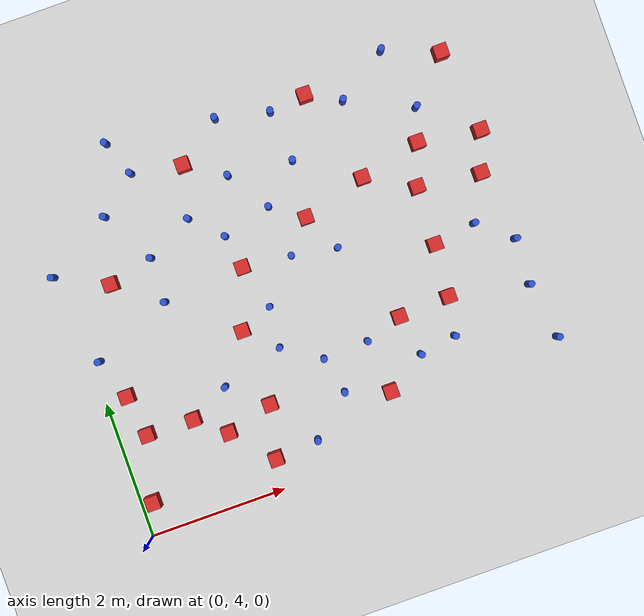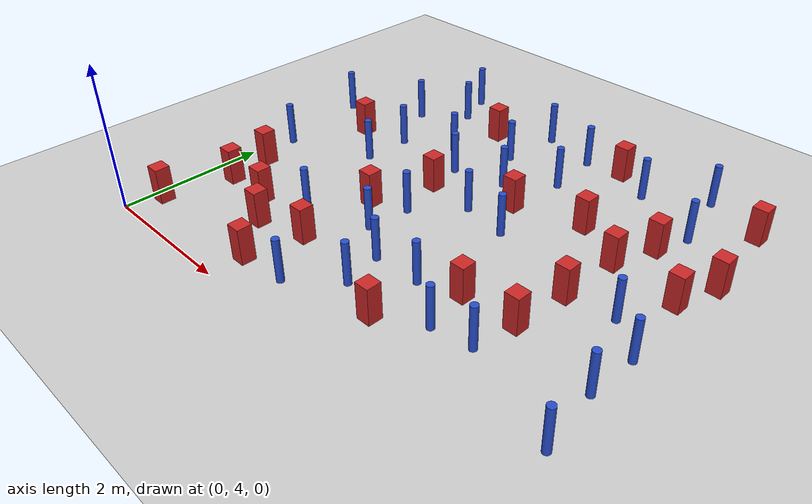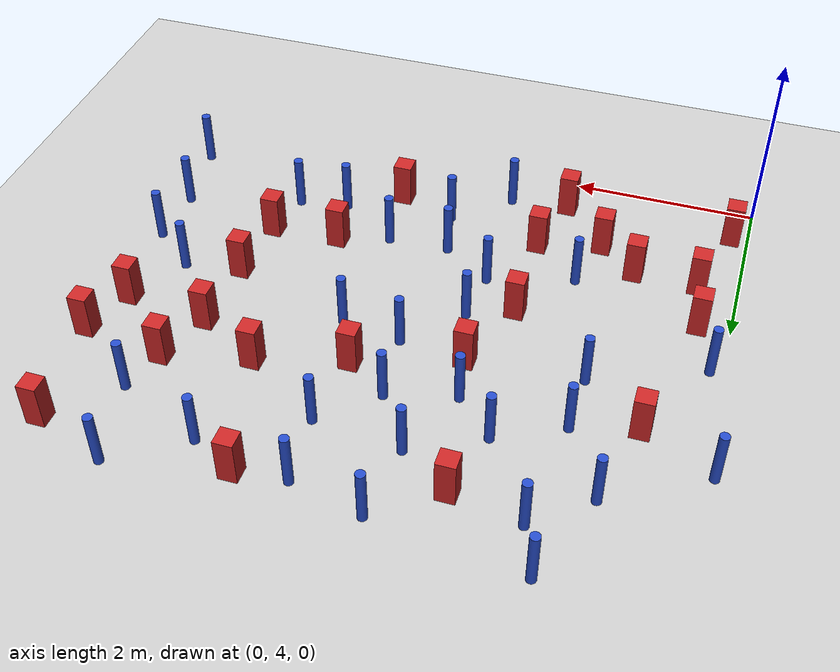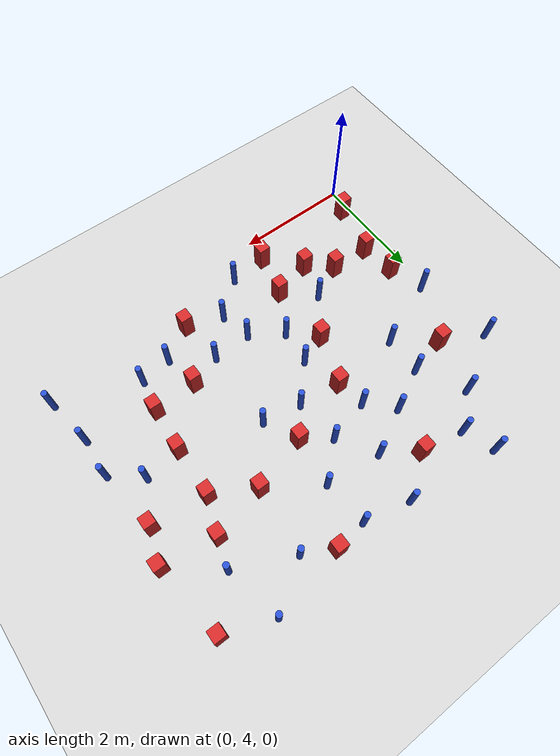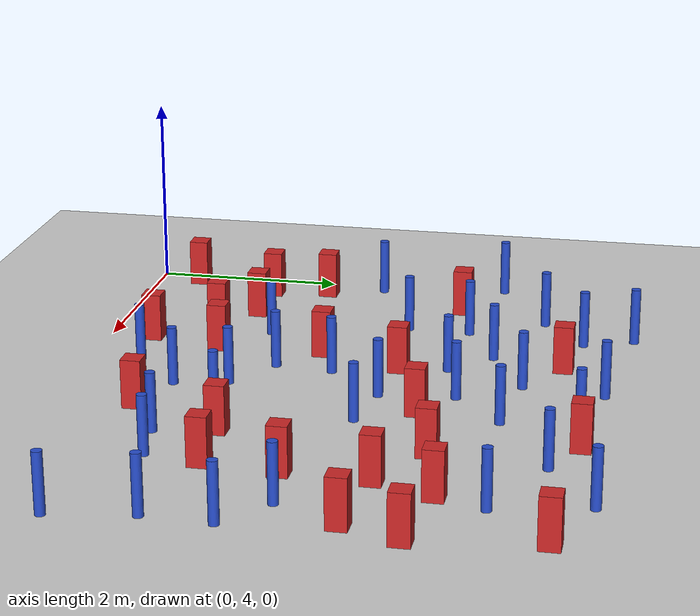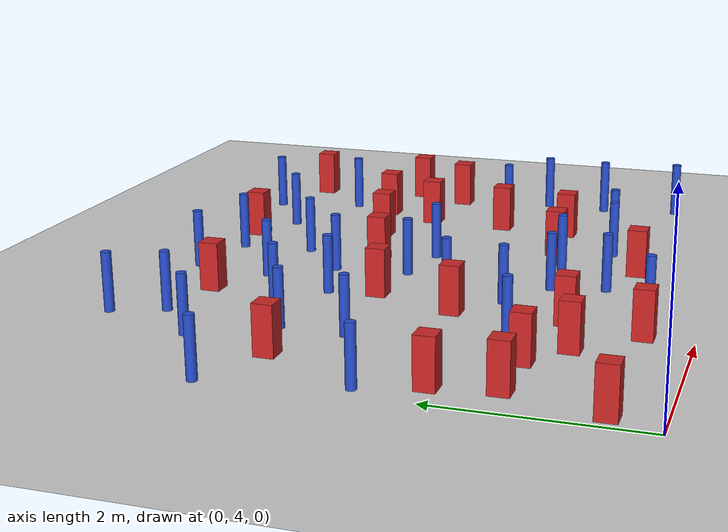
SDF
<sdf version="1.6">
 <world name="default">
  <model name="ground_plane">
   <static>1</static>
   <link name="link">
    <collision name="collision">
     <geometry><plane><normal>0 0 1</normal><size>100 100</size></plane></geometry>
     <surface><friction><ode><mu>100</mu><mu2>50</mu2></ode></friction></surface>
    </collision>
    <visual name="visual">
     <cast_shadows>0</cast_shadows>
     <geometry><plane><normal>0 0 1</normal><size>100 100</size></plane></geometry>
     <material>
      <ambient>1.0 1.0 1.0 1.0</ambient>
      <diffuse>0.8 0.8 0.8 1.0</diffuse>
      <specular>0.01 0.01 0.01 1.000000</specular>
     </material>
    </visual>
   </link>
  </model>
  <model name="square_post_obstacle1">
   <static>true</static>
   <pose>5.17241559216 6.57983816717 1.91545236811e-07 -7.35059704564e-06 1.12565212e-07 2.39332434364e-05</pose>
   <link name="link">
    <pose>0 0 0.25 0 -0 0</pose>
    <inertial>
     <mass>100</mass>
     <inertia>
      <ixx>0.166667</ixx>
      <ixy>0</ixy>
      <ixz>0</ixz>
      <iyy>0.166667</iyy>
      <iyz>0</iyz>
      <izz>0.166667</izz>
     </inertia>
    </inertial>
    <collision name="collision"><geometry><box><size>.2 .2 .5</size></box></geometry></collision>
    <visual name="visual">
     <geometry><box><size>.2 .2 .5</size></box></geometry>
     <material>
      <script><name>Gazebo/Red</name><uri>file://media/materials/scripts/gazebo.material</uri></script>
     </material>
    </visual>
   </link>
  </model>
  <model name="square_post_obstacle5">
   <static>true</static>
   <pose>6.12620740187 7.31819296594 1.91545236811e-07 -7.35059704564e-06 1.12565212e-07 2.39332434364e-05</pose>
   <link name="link">
    <pose>0 0 0.25 0 -0 0</pose>
    <inertial>
     <mass>100</mass>
     <inertia>
      <ixx>0.166667</ixx>
      <ixy>0</ixy>
      <ixz>0</ixz>
      <iyy>0.166667</iyy>
      <iyz>0</iyz>
      <izz>0.166667</izz>
     </inertia>
    </inertial>
    <collision name="collision"><geometry><box><size>.2 .2 .5</size></box></geometry></collision>
    <visual name="visual">
     <geometry><box><size>.2 .2 .5</size></box></geometry>
     <material>
      <script><name>Gazebo/Red</name><uri>file://media/materials/scripts/gazebo.material</uri></script>
     </material>
    </visual>
   </link>
  </model>
  <model name="pole_obstacle5">
   <static>true</static>
   <pose>2.83213413651 9.30783360719 7.38925637345e-09 -8.47170692793e-08 1.24976764408e-08 -1.74513093041e-07</pose>
   <link name="link">
    <pose>0 0 0.3 0 -0 0</pose>
    <inertial>
     <mass>1</mass>
     <inertia><ixx>0.145833</ixx><ixy>0</ixy><ixz>0</ixz><iyy>0.145833</iyy><iyz>0</iyz><izz>0.125</izz></inertia>
    </inertial>
    <collision name="collision">
     <geometry><cylinder><radius>0.05</radius><length>.6</length></cylinder></geometry>
    </collision>
    <visual name="visual">
     <geometry><cylinder><radius>0.05</radius><length>.6</length></cylinder></geometry>
     <material>
      <script><name>Gazebo/Blue</name><uri>file://media/materials/scripts/gazebo.material</uri></script>
     </material>
    </visual>
   </link>
  </model>
  <model name="square_post_obstacle14">
   <static>true</static>
   <pose>3.88749947179 4.82470724292 1.91545236811e-07 -7.35059704564e-06 1.12565212e-07 2.39332434364e-05</pose>
   <link name="link">
    <pose>0 0 0.25 0 -0 0</pose>
    <inertial>
     <mass>100</mass>
     <inertia>
      <ixx>0.166667</ixx>
      <ixy>0</ixy>
      <ixz>0</ixz>
      <iyy>0.166667</iyy>
      <iyz>0</iyz>
      <izz>0.166667</izz>
     </inertia>
    </inertial>
    <collision name="collision"><geometry><box><size>.2 .2 .5</size></box></geometry></collision>
    <visual name="visual">
     <geometry><box><size>.2 .2 .5</size></box></geometry>
     <material>
      <script><name>Gazebo/Red</name><uri>file://media/materials/scripts/gazebo.material</uri></script>
     </material>
    </visual>
   </link>
  </model>
  <model name="pole_obstacle22">
   <static>true</static>
   <pose>1.31160862554 7.74836695447 7.38925637345e-09 -8.47170692799e-08 1.24976765033e-08 -1.74513093018e-07</pose>
   <link name="link">
    <pose>0 0 0.3 0 -0 0</pose>
    <inertial>
     <mass>1</mass>
     <inertia><ixx>0.145833</ixx><ixy>0</ixy><ixz>0</ixz><iyy>0.145833</iyy><iyz>0</iyz><izz>0.125</izz></inertia>
    </inertial>
    <collision name="collision">
     <geometry><cylinder><radius>0.05</radius><length>.6</length></cylinder></geometry>
    </collision>
    <visual name="visual">
     <geometry><cylinder><radius>0.05</radius><length>.6</length></cylinder></geometry>
     <material>
      <script><name>Gazebo/Blue</name><uri>file://media/materials/scripts/gazebo.material</uri></script>
     </material>
    </visual>
   </link>
  </model>
  <model name="pole_obstacle32">
   <static>true</static>
   <pose>0.134973502712 6.60585734662 7.38925637345e-09 -8.471706928e-08 1.24976765036e-08 -1.74513093019e-07</pose>
   <link name="link">
    <pose>0 0 0.3 0 -0 0</pose>
    <inertial>
     <mass>1</mass>
     <inertia><ixx>0.145833</ixx><ixy>0</ixy><ixz>0</ixz><iyy>0.145833</iyy><iyz>0</iyz><izz>0.125</izz></inertia>
    </inertial>
    <collision name="collision">
     <geometry><cylinder><radius>0.05</radius><length>.6</length></cylinder></geometry>
    </collision>
    <visual name="visual">
     <geometry><cylinder><radius>0.05</radius><length>.6</length></cylinder></geometry>
     <material>
      <script><name>Gazebo/Blue</name><uri>file://media/materials/scripts/gazebo.material</uri></script>
     </material>
    </visual>
   </link>
  </model>
  <model name="pole_obstacle34">
   <static>true</static>
   <pose>3.67018050537 8.37507236685 7.38925637345e-09 -8.47170692793e-08 1.24976764408e-08 -1.74513093041e-07</pose>
   <link name="link">
    <pose>0 0 0.3 0 -0 0</pose>
    <inertial>
     <mass>1</mass>
     <inertia><ixx>0.145833</ixx><ixy>0</ixy><ixz>0</ixz><iyy>0.145833</iyy><iyz>0</iyz><izz>0.125</izz></inertia>
    </inertial>
    <collision name="collision">
     <geometry><cylinder><radius>0.05</radius><length>.6</length></cylinder></geometry>
    </collision>
    <visual name="visual">
     <geometry><cylinder><radius>0.05</radius><length>.6</length></cylinder></geometry>
     <material>
      <script><name>Gazebo/Blue</name><uri>file://media/materials/scripts/gazebo.material</uri></script>
     </material>
    </visual>
   </link>
  </model>
  <model name="square_post_obstacle36">
   <static>true</static>
   <pose>0.655256204872 7.58457973847 1.91545236811e-07 -7.35059704564e-06 1.12565212e-07 2.39332434364e-05</pose>
   <link name="link">
    <pose>0 0 0.25 0 -0 0</pose>
    <inertial>
     <mass>100</mass>
     <inertia>
      <ixx>0.166667</ixx>
      <ixy>0</ixy>
      <ixz>0</ixz>
      <iyy>0.166667</iyy>
      <iyz>0</iyz>
      <izz>0.166667</izz>
     </inertia>
    </inertial>
    <collision name="collision"><geometry><box><size>.2 .2 .5</size></box></geometry></collision>
    <visual name="visual">
     <geometry><box><size>.2 .2 .5</size></box></geometry>
     <material>
      <script><name>Gazebo/Red</name><uri>file://media/materials/scripts/gazebo.material</uri></script>
     </material>
    </visual>
   </link>
  </model>
  <model name="pole_obstacle38">
   <static>true</static>
   <pose>1.99631412118 8.09566170405 7.38925637345e-09 -8.47170692798e-08 1.24976764928e-08 -1.74513093023e-07</pose>
   <link name="link">
    <pose>0 0 0.3 0 -0 0</pose>
    <inertial>
     <mass>1</mass>
     <inertia><ixx>0.145833</ixx><ixy>0</ixy><ixz>0</ixz><iyy>0.145833</iyy><iyz>0</iyz><izz>0.125</izz></inertia>
    </inertial>
    <collision name="collision">
     <geometry><cylinder><radius>0.05</radius><length>.6</length></cylinder></geometry>
    </collision>
    <visual name="visual">
     <geometry><cylinder><radius>0.05</radius><length>.6</length></cylinder></geometry>
     <material>
      <script><name>Gazebo/Blue</name><uri>file://media/materials/scripts/gazebo.material</uri></script>
     </material>
    </visual>
   </link>
  </model>
  <model name="pole_obstacle43">
   <static>true</static>
   <pose>5.37183002987 9.42682174601 7.38925637345e-09 -8.471706928e-08 1.24976765081e-08 -1.74513093015e-07</pose>
   <link name="link">
    <pose>0 0 0.3 0 -0 0</pose>
    <inertial>
     <mass>1</mass>
     <inertia><ixx>0.145833</ixx><ixy>0</ixy><ixz>0</ixz><iyy>0.145833</iyy><iyz>0</iyz><izz>0.125</izz></inertia>
    </inertial>
    <collision name="collision">
     <geometry><cylinder><radius>0.05</radius><length>.6</length></cylinder></geometry>
    </collision>
    <visual name="visual">
     <geometry><cylinder><radius>0.05</radius><length>.6</length></cylinder></geometry>
     <material>
      <script><name>Gazebo/Blue</name><uri>file://media/materials/scripts/gazebo.material</uri></script>
     </material>
    </visual>
   </link>
  </model>
  <model name="square_post_obstacle44">
   <static>true</static>
   <pose>2.213361793 5.22627907843 1.91545236811e-07 -7.35059704564e-06 1.12565212e-07 2.39332434364e-05</pose>
   <link name="link">
    <pose>0 0 0.25 0 -0 0</pose>
    <inertial>
     <mass>100</mass>
     <inertia>
      <ixx>0.166667</ixx>
      <ixy>0</ixy>
      <ixz>0</ixz>
      <iyy>0.166667</iyy>
      <iyz>0</iyz>
      <izz>0.166667</izz>
     </inertia>
    </inertial>
    <collision name="collision"><geometry><box><size>.2 .2 .5</size></box></geometry></collision>
    <visual name="visual">
     <geometry><box><size>.2 .2 .5</size></box></geometry>
     <material>
      <script><name>Gazebo/Red</name><uri>file://media/materials/scripts/gazebo.material</uri></script>
     </material>
    </visual>
   </link>
  </model>
  <model name="pole_obstacle46">
   <static>true</static>
   <pose>2.40883959603 7.68379019346 7.38925637345e-09 -8.47170692798e-08 1.24976765033e-08 -1.74513093019e-07</pose>
   <link name="link">
    <pose>0 0 0.3 0 -0 0</pose>
    <inertial>
     <mass>1</mass>
     <inertia><ixx>0.145833</ixx><ixy>0</ixy><ixz>0</ixz><iyy>0.145833</iyy><iyz>0</iyz><izz>0.125</izz></inertia>
    </inertial>
    <collision name="collision">
     <geometry><cylinder><radius>0.05</radius><length>.6</length></cylinder></geometry>
    </collision>
    <visual name="visual">
     <geometry><cylinder><radius>0.05</radius><length>.6</length></cylinder></geometry>
     <material>
      <script><name>Gazebo/Blue</name><uri>file://media/materials/scripts/gazebo.material</uri></script>
     </material>
    </visual>
   </link>
  </model>
  <model name="pole_obstacle47">
   <static>true</static>
   <pose>2.67036907308 6.53079809149 7.38925637345e-09 -8.47170692798e-08 1.24976765033e-08 -1.74513093019e-07</pose>
   <link name="link">
    <pose>0 0 0.3 0 -0 0</pose>
    <inertial>
     <mass>1</mass>
     <inertia><ixx>0.145833</ixx><ixy>0</ixy><ixz>0</ixz><iyy>0.145833</iyy><iyz>0</iyz><izz>0.125</izz></inertia>
    </inertial>
    <collision name="collision">
     <geometry><cylinder><radius>0.05</radius><length>.6</length></cylinder></geometry>
    </collision>
    <visual name="visual">
     <geometry><cylinder><radius>0.05</radius><length>.6</length></cylinder></geometry>
     <material>
      <script><name>Gazebo/Blue</name><uri>file://media/materials/scripts/gazebo.material</uri></script>
     </material>
    </visual>
   </link>
  </model>
  <model name="square_post_obstacle55">
   <static>true</static>
   <pose>5.42168226613 8.02622924849 1.91545236811e-07 -7.35059704564e-06 1.12565212e-07 2.39332434364e-05</pose>
   <link name="link">
    <pose>0 0 0.25 0 -0 0</pose>
    <inertial>
     <mass>100</mass>
     <inertia>
      <ixx>0.166667</ixx>
      <ixy>0</ixy>
      <ixz>0</ixz>
      <iyy>0.166667</iyy>
      <iyz>0</iyz>
      <izz>0.166667</izz>
     </inertia>
    </inertial>
    <collision name="collision"><geometry><box><size>.2 .2 .5</size></box></geometry></collision>
    <visual name="visual">
     <geometry><box><size>.2 .2 .5</size></box></geometry>
     <material>
      <script><name>Gazebo/Red</name><uri>file://media/materials/scripts/gazebo.material</uri></script>
     </material>
    </visual>
   </link>
  </model>
  <model name="pole_obstacle54">
   <static>true</static>
   <pose>-0.0874605672671 7.95014138427 7.38925637345e-09 -8.47170692798e-08 1.24976764933e-08 -1.74513093023e-07</pose>
   <link name="link">
    <pose>0 0 0.3 0 -0 0</pose>
    <inertial>
     <mass>1</mass>
     <inertia><ixx>0.145833</ixx><ixy>0</ixy><ixz>0</ixz><iyy>0.145833</iyy><iyz>0</iyz><izz>0.125</izz></inertia>
    </inertial>
    <collision name="collision">
     <geometry><cylinder><radius>0.05</radius><length>.6</length></cylinder></geometry>
    </collision>
    <visual name="visual">
     <geometry><cylinder><radius>0.05</radius><length>.6</length></cylinder></geometry>
     <material>
      <script><name>Gazebo/Blue</name><uri>file://media/materials/scripts/gazebo.material</uri></script>
     </material>
    </visual>
   </link>
  </model>
  <model name="pole_obstacle60">
   <static>true</static>
   <pose>1.25440195212 9.49234281528 7.38925637345e-09 -8.47170692798e-08 1.24976764881e-08 -1.74513093027e-07</pose>
   <link name="link">
    <pose>0 0 0.3 0 -0 0</pose>
    <inertial>
     <mass>1</mass>
     <inertia><ixx>0.145833</ixx><ixy>0</ixy><ixz>0</ixz><iyy>0.145833</iyy><iyz>0</iyz><izz>0.125</izz></inertia>
    </inertial>
    <collision name="collision">
     <geometry><cylinder><radius>0.05</radius><length>.6</length></cylinder></geometry>
    </collision>
    <visual name="visual">
     <geometry><cylinder><radius>0.05</radius><length>.6</length></cylinder></geometry>
     <material>
      <script><name>Gazebo/Blue</name><uri>file://media/materials/scripts/gazebo.material</uri></script>
     </material>
    </visual>
   </link>
  </model>
  <model name="square_post_obstacle64">
   <static>true</static>
   <pose>5.20816578705 7.43209575624 1.91545236811e-07 -7.35059704564e-06 1.12565212e-07 2.39332434364e-05</pose>
   <link name="link">
    <pose>0 0 0.25 0 -0 0</pose>
    <inertial>
     <mass>100</mass>
     <inertia>
      <ixx>0.166667</ixx>
      <ixy>0</ixy>
      <ixz>0</ixz>
      <iyy>0.166667</iyy>
      <iyz>0</iyz>
      <izz>0.166667</izz>
     </inertia>
    </inertial>
    <collision name="collision"><geometry><box><size>.2 .2 .5</size></box></geometry></collision>
    <visual name="visual">
     <geometry><box><size>.2 .2 .5</size></box></geometry>
     <material>
      <script><name>Gazebo/Red</name><uri>file://media/materials/scripts/gazebo.material</uri></script>
     </material>
    </visual>
   </link>
  </model>
  <model name="pole_obstacle63">
   <static>true</static>
   <pose>6.2490078587 5.59803535284 7.38925637345e-09 -8.47170692796e-08 1.24976764786e-08 -1.74513093032e-07</pose>
   <link name="link">
    <pose>0 0 0.3 0 -0 0</pose>
    <inertial>
     <mass>1</mass>
     <inertia><ixx>0.145833</ixx><ixy>0</ixy><ixz>0</ixz><iyy>0.145833</iyy><iyz>0</iyz><izz>0.125</izz></inertia>
    </inertial>
    <collision name="collision">
     <geometry><cylinder><radius>0.05</radius><length>.6</length></cylinder></geometry>
    </collision>
    <visual name="visual">
     <geometry><cylinder><radius>0.05</radius><length>.6</length></cylinder></geometry>
     <material>
      <script><name>Gazebo/Blue</name><uri>file://media/materials/scripts/gazebo.material</uri></script>
     </material>
    </visual>
   </link>
  </model>
  <model name="pole_obstacle74">
   <static>true</static>
   <pose>2.73351678044 8.48164151533 7.38925637345e-09 -8.47170692793e-08 1.24976764408e-08 -1.74513093041e-07</pose>
   <link name="link">
    <pose>0 0 0.3 0 -0 0</pose>
    <inertial>
     <mass>1</mass>
     <inertia><ixx>0.145833</ixx><ixy>0</ixy><ixz>0</ixz><iyy>0.145833</iyy><iyz>0</iyz><izz>0.125</izz></inertia>
    </inertial>
    <collision name="collision">
     <geometry><cylinder><radius>0.05</radius><length>.6</length></cylinder></geometry>
    </collision>
    <visual name="visual">
     <geometry><cylinder><radius>0.05</radius><length>.6</length></cylinder></geometry>
     <material>
      <script><name>Gazebo/Blue</name><uri>file://media/materials/scripts/gazebo.material</uri></script>
     </material>
    </visual>
   </link>
  </model>
  <model name="pole_obstacle81">
   <static>true</static>
   <pose>4.62969621121 8.93830365577 7.38925637345e-09 -8.471706928e-08 1.24976765081e-08 -1.74513093015e-07</pose>
   <link name="link">
    <pose>0 0 0.3 0 -0 0</pose>
    <inertial>
     <mass>1</mass>
     <inertia><ixx>0.145833</ixx><ixy>0</ixy><ixz>0</ixz><iyy>0.145833</iyy><iyz>0</iyz><izz>0.125</izz></inertia>
    </inertial>
    <collision name="collision">
     <geometry><cylinder><radius>0.05</radius><length>.6</length></cylinder></geometry>
    </collision>
    <visual name="visual">
     <geometry><cylinder><radius>0.05</radius><length>.6</length></cylinder></geometry>
     <material>
      <script><name>Gazebo/Blue</name><uri>file://media/materials/scripts/gazebo.material</uri></script>
     </material>
    </visual>
   </link>
  </model>
  <model name="pole_obstacle90">
   <static>true</static>
   <pose>1.29216793242 7.09213186938 7.38925637345e-09 -8.47170692799e-08 1.24976765033e-08 -1.74513093018e-07</pose>
   <link name="link">
    <pose>0 0 0.3 0 -0 0</pose>
    <inertial>
     <mass>1</mass>
     <inertia><ixx>0.145833</ixx><ixy>0</ixy><ixz>0</ixz><iyy>0.145833</iyy><iyz>0</iyz><izz>0.125</izz></inertia>
    </inertial>
    <collision name="collision">
     <geometry><cylinder><radius>0.05</radius><length>.6</length></cylinder></geometry>
    </collision>
    <visual name="visual">
     <geometry><cylinder><radius>0.05</radius><length>.6</length></cylinder></geometry>
     <material>
      <script><name>Gazebo/Blue</name><uri>file://media/materials/scripts/gazebo.material</uri></script>
     </material>
    </visual>
   </link>
  </model>
  <model name="pole_obstacle97">
   <static>true</static>
   <pose>3.85957681827 6.99582978268 7.38925637345e-09 -8.47170692798e-08 1.24976765033e-08 -1.74513093019e-07</pose>
   <link name="link">
    <pose>0 0 0.3 0 -0 0</pose>
    <inertial>
     <mass>1</mass>
     <inertia><ixx>0.145833</ixx><ixy>0</ixy><ixz>0</ixz><iyy>0.145833</iyy><iyz>0</iyz><izz>0.125</izz></inertia>
    </inertial>
    <collision name="collision">
     <geometry><cylinder><radius>0.05</radius><length>.6</length></cylinder></geometry>
    </collision>
    <visual name="visual">
     <geometry><cylinder><radius>0.05</radius><length>.6</length></cylinder></geometry>
     <material>
      <script><name>Gazebo/Blue</name><uri>file://media/materials/scripts/gazebo.material</uri></script>
     </material>
    </visual>
   </link>
  </model>
  <model name="square_post_obstacle89">
   <static>true</static>
   <pose>6.15918084794 9.11562397184 1.91545236811e-07 -7.35059704564e-06 1.12565212e-07 2.39332434364e-05</pose>
   <link name="link">
    <pose>0 0 0.25 0 -0 0</pose>
    <inertial>
     <mass>100</mass>
     <inertia>
      <ixx>0.166667</ixx>
      <ixy>0</ixy>
      <ixz>0</ixz>
      <iyy>0.166667</iyy>
      <iyz>0</iyz>
      <izz>0.166667</izz>
     </inertia>
    </inertial>
    <collision name="collision"><geometry><box><size>.2 .2 .5</size></box></geometry></collision>
    <visual name="visual">
     <geometry><box><size>.2 .2 .5</size></box></geometry>
     <material>
      <script><name>Gazebo/Red</name><uri>file://media/materials/scripts/gazebo.material</uri></script>
     </material>
    </visual>
   </link>
  </model>
  <model name="square_post_obstacle93">
   <static>true</static>
   <pose>1.53048885681 5.04342255428 1.91545236811e-07 -7.35059704564e-06 1.12565212e-07 2.39332434364e-05</pose>
   <link name="link">
    <pose>0 0 0.25 0 -0 0</pose>
    <inertial>
     <mass>100</mass>
     <inertia>
      <ixx>0.166667</ixx>
      <ixy>0</ixy>
      <ixz>0</ixz>
      <iyy>0.166667</iyy>
      <iyz>0</iyz>
      <izz>0.166667</izz>
     </inertia>
    </inertial>
    <collision name="collision"><geometry><box><size>.2 .2 .5</size></box></geometry></collision>
    <visual name="visual">
     <geometry><box><size>.2 .2 .5</size></box></geometry>
     <material>
      <script><name>Gazebo/Red</name><uri>file://media/materials/scripts/gazebo.material</uri></script>
     </material>
    </visual>
   </link>
  </model>
  <model name="pole_obstacle105">
   <static>true</static>
   <pose>5.57735691718 8.5050680303 7.38925637345e-09 -8.471706928e-08 1.24976765081e-08 -1.74513093015e-07</pose>
   <link name="link">
    <pose>0 0 0.3 0 -0 0</pose>
    <inertial>
     <mass>1</mass>
     <inertia><ixx>0.145833</ixx><ixy>0</ixy><ixz>0</ixz><iyy>0.145833</iyy><iyz>0</iyz><izz>0.125</izz></inertia>
    </inertial>
    <collision name="collision">
     <geometry><cylinder><radius>0.05</radius><length>.6</length></cylinder></geometry>
    </collision>
    <visual name="visual">
     <geometry><cylinder><radius>0.05</radius><length>.6</length></cylinder></geometry>
     <material>
      <script><name>Gazebo/Blue</name><uri>file://media/materials/scripts/gazebo.material</uri></script>
     </material>
    </visual>
   </link>
  </model>
  <model name="pole_obstacle109">
   <static>true</static>
   <pose>3.81399548282 5.60609675276 7.38925637345e-09 -8.47170692798e-08 1.24976765033e-08 -1.74513093019e-07</pose>
   <link name="link">
    <pose>0 0 0.3 0 -0 0</pose>
    <inertial>
     <mass>1</mass>
     <inertia><ixx>0.145833</ixx><ixy>0</ixy><ixz>0</ixz><iyy>0.145833</iyy><iyz>0</iyz><izz>0.125</izz></inertia>
    </inertial>
    <collision name="collision">
     <geometry><cylinder><radius>0.05</radius><length>.6</length></cylinder></geometry>
    </collision>
    <visual name="visual">
     <geometry><cylinder><radius>0.05</radius><length>.6</length></cylinder></geometry>
     <material>
      <script><name>Gazebo/Blue</name><uri>file://media/materials/scripts/gazebo.material</uri></script>
     </material>
    </visual>
   </link>
  </model>
  <model name="pole_obstacle114">
   <static>true</static>
   <pose>3.60449244363 9.13206002548 7.38925637345e-09 -8.47170692793e-08 1.24976764408e-08 -1.74513093041e-07</pose>
   <link name="link">
    <pose>0 0 0.3 0 -0 0</pose>
    <inertial>
     <mass>1</mass>
     <inertia><ixx>0.145833</ixx><ixy>0</ixy><ixz>0</ixz><iyy>0.145833</iyy><iyz>0</iyz><izz>0.125</izz></inertia>
    </inertial>
    <collision name="collision">
     <geometry><cylinder><radius>0.05</radius><length>.6</length></cylinder></geometry>
    </collision>
    <visual name="visual">
     <geometry><cylinder><radius>0.05</radius><length>.6</length></cylinder></geometry>
     <material>
      <script><name>Gazebo/Blue</name><uri>file://media/materials/scripts/gazebo.material</uri></script>
     </material>
    </visual>
   </link>
  </model>
  <model name="pole_obstacle116">
   <static>true</static>
   <pose>3.20375683495 7.10827957734 7.38925637345e-09 -8.47170692798e-08 1.24976765033e-08 -1.74513093019e-07</pose>
   <link name="link">
    <pose>0 0 0.3 0 -0 0</pose>
    <inertial>
     <mass>1</mass>
     <inertia><ixx>0.145833</ixx><ixy>0</ixy><ixz>0</ixz><iyy>0.145833</iyy><iyz>0</iyz><izz>0.125</izz></inertia>
    </inertial>
    <collision name="collision">
     <geometry><cylinder><radius>0.05</radius><length>.6</length></cylinder></geometry>
    </collision>
    <visual name="visual">
     <geometry><cylinder><radius>0.05</radius><length>.6</length></cylinder></geometry>
     <material>
      <script><name>Gazebo/Blue</name><uri>file://media/materials/scripts/gazebo.material</uri></script>
     </material>
    </visual>
   </link>
  </model>
  <model name="pole_obstacle119">
   <static>true</static>
   <pose>2.68119062996 4.52120176312 7.38925637345e-09 -8.47170692798e-08 1.24976765033e-08 -1.74513093019e-07</pose>
   <link name="link">
    <pose>0 0 0.3 0 -0 0</pose>
    <inertial>
     <mass>1</mass>
     <inertia><ixx>0.145833</ixx><ixy>0</ixy><ixz>0</ixz><iyy>0.145833</iyy><iyz>0</iyz><izz>0.125</izz></inertia>
    </inertial>
    <collision name="collision">
     <geometry><cylinder><radius>0.05</radius><length>.6</length></cylinder></geometry>
    </collision>
    <visual name="visual">
     <geometry><cylinder><radius>0.05</radius><length>.6</length></cylinder></geometry>
     <material>
      <script><name>Gazebo/Blue</name><uri>file://media/materials/scripts/gazebo.material</uri></script>
     </material>
    </visual>
   </link>
  </model>
  <model name="pole_obstacle121">
   <static>true</static>
   <pose>2.60925362654 5.93713046502 7.38925637345e-09 -8.47170692798e-08 1.24976765033e-08 -1.74513093019e-07</pose>
   <link name="link">
    <pose>0 0 0.3 0 -0 0</pose>
    <inertial>
     <mass>1</mass>
     <inertia><ixx>0.145833</ixx><ixy>0</ixy><ixz>0</ixz><iyy>0.145833</iyy><iyz>0</iyz><izz>0.125</izz></inertia>
    </inertial>
    <collision name="collision">
     <geometry><cylinder><radius>0.05</radius><length>.6</length></cylinder></geometry>
    </collision>
    <visual name="visual">
     <geometry><cylinder><radius>0.05</radius><length>.6</length></cylinder></geometry>
     <material>
      <script><name>Gazebo/Blue</name><uri>file://media/materials/scripts/gazebo.material</uri></script>
     </material>
    </visual>
   </link>
  </model>
  <model name="pole_obstacle127">
   <static>true</static>
   <pose>1.44505064701 8.97486241884 7.38925637345e-09 -8.47170692798e-08 1.24976764881e-08 -1.74513093027e-07</pose>
   <link name="link">
    <pose>0 0 0.3 0 -0 0</pose>
    <inertial>
     <mass>1</mass>
     <inertia><ixx>0.145833</ixx><ixy>0</ixy><ixz>0</ixz><iyy>0.145833</iyy><iyz>0</iyz><izz>0.125</izz></inertia>
    </inertial>
    <collision name="collision">
     <geometry><cylinder><radius>0.05</radius><length>.6</length></cylinder></geometry>
    </collision>
    <visual name="visual">
     <geometry><cylinder><radius>0.05</radius><length>.6</length></cylinder></geometry>
     <material>
      <script><name>Gazebo/Blue</name><uri>file://media/materials/scripts/gazebo.material</uri></script>
     </material>
    </visual>
   </link>
  </model>
  <model name="square_post_obstacle113">
   <static>true</static>
   <pose>4.51950296672 7.81662821188 1.91545236811e-07 -7.35059704564e-06 1.12565212e-07 2.39332434364e-05</pose>
   <link name="link">
    <pose>0 0 0.25 0 -0 0</pose>
    <inertial>
     <mass>100</mass>
     <inertia>
      <ixx>0.166667</ixx>
      <ixy>0</ixy>
      <ixz>0</ixz>
      <iyy>0.166667</iyy>
      <iyz>0</iyz>
      <izz>0.166667</izz>
     </inertia>
    </inertial>
    <collision name="collision"><geometry><box><size>.2 .2 .5</size></box></geometry></collision>
    <visual name="visual">
     <geometry><box><size>.2 .2 .5</size></box></geometry>
     <material>
      <script><name>Gazebo/Red</name><uri>file://media/materials/scripts/gazebo.material</uri></script>
     </material>
    </visual>
   </link>
  </model>
  <model name="square_post_obstacle114">
   <static>true</static>
   <pose>2.18580687244 8.83728782776 1.91545236811e-07 -7.35059704564e-06 1.12565212e-07 2.39332434364e-05</pose>
   <link name="link">
    <pose>0 0 0.25 0 -0 0</pose>
    <inertial>
     <mass>100</mass>
     <inertia>
      <ixx>0.166667</ixx>
      <ixy>0</ixy>
      <ixz>0</ixz>
      <iyy>0.166667</iyy>
      <iyz>0</iyz>
      <izz>0.166667</izz>
     </inertia>
    </inertial>
    <collision name="collision"><geometry><box><size>.2 .2 .5</size></box></geometry></collision>
    <visual name="visual">
     <geometry><box><size>.2 .2 .5</size></box></geometry>
     <material>
      <script><name>Gazebo/Red</name><uri>file://media/materials/scripts/gazebo.material</uri></script>
     </material>
    </visual>
   </link>
  </model>
  <model name="pole_obstacle141">
   <static>true</static>
   <pose>5.00628255121 5.26275009107 7.38925637345e-09 -8.47170692796e-08 1.24976764786e-08 -1.74513093032e-07</pose>
   <link name="link">
    <pose>0 0 0.3 0 -0 0</pose>
    <inertial>
     <mass>1</mass>
     <inertia><ixx>0.145833</ixx><ixy>0</ixy><ixz>0</ixz><iyy>0.145833</iyy><iyz>0</iyz><izz>0.125</izz></inertia>
    </inertial>
    <collision name="collision">
     <geometry><cylinder><radius>0.05</radius><length>.6</length></cylinder></geometry>
    </collision>
    <visual name="visual">
     <geometry><cylinder><radius>0.05</radius><length>.6</length></cylinder></geometry>
     <material>
      <script><name>Gazebo/Blue</name><uri>file://media/materials/scripts/gazebo.material</uri></script>
     </material>
    </visual>
   </link>
  </model>
  <model name="square_post_obstacle138">
   <static>true</static>
   <pose>1.11770677654 5.38811823941 1.91545236811e-07 -7.35059704564e-06 1.12565212e-07 2.39332434364e-05</pose>
   <link name="link">
    <pose>0 0 0.25 0 -0 0</pose>
    <inertial>
     <mass>100</mass>
     <inertia>
      <ixx>0.166667</ixx>
      <ixy>0</ixy>
      <ixz>0</ixz>
      <iyy>0.166667</iyy>
      <iyz>0</iyz>
      <izz>0.166667</izz>
     </inertia>
    </inertial>
    <collision name="collision"><geometry><box><size>.2 .2 .5</size></box></geometry></collision>
    <visual name="visual">
     <geometry><box><size>.2 .2 .5</size></box></geometry>
     <material>
      <script><name>Gazebo/Red</name><uri>file://media/materials/scripts/gazebo.material</uri></script>
     </material>
    </visual>
   </link>
  </model>
  <model name="square_post_obstacle145">
   <static>true</static>
   <pose>5.10492572811 5.82029506303 1.91545236811e-07 -7.35059704564e-06 1.12565212e-07 2.39332434364e-05</pose>
   <link name="link">
    <pose>0 0 0.25 0 -0 0</pose>
    <inertial>
     <mass>100</mass>
     <inertia>
      <ixx>0.166667</ixx>
      <ixy>0</ixy>
      <ixz>0</ixz>
      <iyy>0.166667</iyy>
      <iyz>0</iyz>
      <izz>0.166667</izz>
     </inertia>
    </inertial>
    <collision name="collision"><geometry><box><size>.2 .2 .5</size></box></geometry></collision>
    <visual name="visual">
     <geometry><box><size>.2 .2 .5</size></box></geometry>
     <material>
      <script><name>Gazebo/Red</name><uri>file://media/materials/scripts/gazebo.material</uri></script>
     </material>
    </visual>
   </link>
  </model>
  <model name="square_post_obstacle152">
   <static>true</static>
   <pose>2.19127904827 6.33824658173 1.91545236811e-07 -7.35059704564e-06 1.12565212e-07 2.39332434364e-05</pose>
   <link name="link">
    <pose>0 0 0.25 0 -0 0</pose>
    <inertial>
     <mass>100</mass>
     <inertia>
      <ixx>0.166667</ixx>
      <ixy>0</ixy>
      <ixz>0</ixz>
      <iyy>0.166667</iyy>
      <iyz>0</iyz>
      <izz>0.166667</izz>
     </inertia>
    </inertial>
    <collision name="collision"><geometry><box><size>.2 .2 .5</size></box></geometry></collision>
    <visual name="visual">
     <geometry><box><size>.2 .2 .5</size></box></geometry>
     <material>
      <script><name>Gazebo/Red</name><uri>file://media/materials/scripts/gazebo.material</uri></script>
     </material>
    </visual>
   </link>
  </model>
  <model name="square_post_obstacle155">
   <static>true</static>
   <pose>0.428823108697 5.40102465153 1.91545236811e-07 -7.35059704564e-06 1.12565212e-07 2.39332434364e-05</pose>
   <link name="link">
    <pose>0 0 0.25 0 -0 0</pose>
    <inertial>
     <mass>100</mass>
     <inertia>
      <ixx>0.166667</ixx>
      <ixy>0</ixy>
      <ixz>0</ixz>
      <iyy>0.166667</iyy>
      <iyz>0</iyz>
      <izz>0.166667</izz>
     </inertia>
    </inertial>
    <collision name="collision"><geometry><box><size>.2 .2 .5</size></box></geometry></collision>
    <visual name="visual">
     <geometry><box><size>.2 .2 .5</size></box></geometry>
     <material>
      <script><name>Gazebo/Red</name><uri>file://media/materials/scripts/gazebo.material</uri></script>
     </material>
    </visual>
   </link>
  </model>
  <model name="pole_obstacle167">
   <static>true</static>
   <pose>1.69546881667 5.67052377772 7.38925637345e-09 -8.47170692799e-08 1.24976765033e-08 -1.74513093018e-07</pose>
   <link name="link">
    <pose>0 0 0.3 0 -0 0</pose>
    <inertial>
     <mass>1</mass>
     <inertia><ixx>0.145833</ixx><ixy>0</ixy><ixz>0</ixz><iyy>0.145833</iyy><iyz>0</iyz><izz>0.125</izz></inertia>
    </inertial>
    <collision name="collision">
     <geometry><cylinder><radius>0.05</radius><length>.6</length></cylinder></geometry>
    </collision>
    <visual name="visual">
     <geometry><cylinder><radius>0.05</radius><length>.6</length></cylinder></geometry>
     <material>
      <script><name>Gazebo/Blue</name><uri>file://media/materials/scripts/gazebo.material</uri></script>
     </material>
    </visual>
   </link>
  </model>
  <model name="pole_obstacle175">
   <static>true</static>
   <pose>3.12816880006 7.8723347918 7.38925637345e-09 -8.47170692798e-08 1.24976765033e-08 -1.74513093019e-07</pose>
   <link name="link">
    <pose>0 0 0.3 0 -0 0</pose>
    <inertial>
     <mass>1</mass>
     <inertia><ixx>0.145833</ixx><ixy>0</ixy><ixz>0</ixz><iyy>0.145833</iyy><iyz>0</iyz><izz>0.125</izz></inertia>
    </inertial>
    <collision name="collision">
     <geometry><cylinder><radius>0.05</radius><length>.6</length></cylinder></geometry>
    </collision>
    <visual name="visual">
     <geometry><cylinder><radius>0.05</radius><length>.6</length></cylinder></geometry>
     <material>
      <script><name>Gazebo/Blue</name><uri>file://media/materials/scripts/gazebo.material</uri></script>
     </material>
    </visual>
   </link>
  </model>
  <model name="pole_obstacle176">
   <static>true</static>
   <pose>6.37508342224 4.76295795279 7.38925637345e-09 -8.47170692796e-08 1.24976764786e-08 -1.74513093032e-07</pose>
   <link name="link">
    <pose>0 0 0.3 0 -0 0</pose>
    <inertial>
     <mass>1</mass>
     <inertia><ixx>0.145833</ixx><ixy>0</ixy><ixz>0</ixz><iyy>0.145833</iyy><iyz>0</iyz><izz>0.125</izz></inertia>
    </inertial>
    <collision name="collision">
     <geometry><cylinder><radius>0.05</radius><length>.6</length></cylinder></geometry>
    </collision>
    <visual name="visual">
     <geometry><cylinder><radius>0.05</radius><length>.6</length></cylinder></geometry>
     <material>
      <script><name>Gazebo/Blue</name><uri>file://media/materials/scripts/gazebo.material</uri></script>
     </material>
    </visual>
   </link>
  </model>
  <model name="pole_obstacle179">
   <static>true</static>
   <pose>0.890500842229 8.51519495743 7.38925637345e-09 -8.47170692797e-08 1.249767648e-08 -1.74513093032e-07</pose>
   <link name="link">
    <pose>0 0 0.3 0 -0 0</pose>
    <inertial>
     <mass>1</mass>
     <inertia><ixx>0.145833</ixx><ixy>0</ixy><ixz>0</ixz><iyy>0.145833</iyy><iyz>0</iyz><izz>0.125</izz></inertia>
    </inertial>
    <collision name="collision">
     <geometry><cylinder><radius>0.05</radius><length>.6</length></cylinder></geometry>
    </collision>
    <visual name="visual">
     <geometry><cylinder><radius>0.05</radius><length>.6</length></cylinder></geometry>
     <material>
      <script><name>Gazebo/Blue</name><uri>file://media/materials/scripts/gazebo.material</uri></script>
     </material>
    </visual>
   </link>
  </model>
  <model name="pole_obstacle182">
   <static>true</static>
   <pose>3.26705088555 5.03581969457 7.38925637345e-09 -8.47170692798e-08 1.24976765033e-08 -1.74513093019e-07</pose>
   <link name="link">
    <pose>0 0 0.3 0 -0 0</pose>
    <inertial>
     <mass>1</mass>
     <inertia><ixx>0.145833</ixx><ixy>0</ixy><ixz>0</ixz><iyy>0.145833</iyy><iyz>0</iyz><izz>0.125</izz></inertia>
    </inertial>
    <collision name="collision">
     <geometry><cylinder><radius>0.05</radius><length>.6</length></cylinder></geometry>
    </collision>
    <visual name="visual">
     <geometry><cylinder><radius>0.05</radius><length>.6</length></cylinder></geometry>
     <material>
      <script><name>Gazebo/Blue</name><uri>file://media/materials/scripts/gazebo.material</uri></script>
     </material>
    </visual>
   </link>
  </model>
  <model name="square_post_obstacle171">
   <static>true</static>
   <pose>6.3215436499 7.88960384452 1.91545236811e-07 -7.35059704564e-06 1.12565212e-07 2.39332434364e-05</pose>
   <link name="link">
    <pose>0 0 0.25 0 -0 0</pose>
    <inertial>
     <mass>100</mass>
     <inertia>
      <ixx>0.166667</ixx>
      <ixy>0</ixy>
      <ixz>0</ixz>
      <iyy>0.166667</iyy>
      <iyz>0</iyz>
      <izz>0.166667</izz>
     </inertia>
    </inertial>
    <collision name="collision"><geometry><box><size>.2 .2 .5</size></box></geometry></collision>
    <visual name="visual">
     <geometry><box><size>.2 .2 .5</size></box></geometry>
     <material>
      <script><name>Gazebo/Red</name><uri>file://media/materials/scripts/gazebo.material</uri></script>
     </material>
    </visual>
   </link>
  </model>
  <model name="square_post_obstacle176">
   <static>true</static>
   <pose>0.184887308028 4.47112171608 1.91545236811e-07 -7.35059704564e-06 1.12565212e-07 2.39332434364e-05</pose>
   <link name="link">
    <pose>0 0 0.25 0 -0 0</pose>
    <inertial>
     <mass>100</mass>
     <inertia>
      <ixx>0.166667</ixx>
      <ixy>0</ixy>
      <ixz>0</ixz>
      <iyy>0.166667</iyy>
      <iyz>0</iyz>
      <izz>0.166667</izz>
     </inertia>
    </inertial>
    <collision name="collision"><geometry><box><size>.2 .2 .5</size></box></geometry></collision>
    <visual name="visual">
     <geometry><box><size>.2 .2 .5</size></box></geometry>
     <material>
      <script><name>Gazebo/Red</name><uri>file://media/materials/scripts/gazebo.material</uri></script>
     </material>
    </visual>
   </link>
  </model>
  <model name="square_post_obstacle191">
   <static>true</static>
   <pose>2.03590783833 4.47025397179 1.91545236811e-07 -7.35059704564e-06 1.12565212e-07 2.39332434364e-05</pose>
   <link name="link">
    <pose>0 0 0.25 0 -0 0</pose>
    <inertial>
     <mass>100</mass>
     <inertia>
      <ixx>0.166667</ixx>
      <ixy>0</ixy>
      <ixz>0</ixz>
      <iyy>0.166667</iyy>
      <iyz>0</iyz>
      <izz>0.166667</izz>
     </inertia>
    </inertial>
    <collision name="collision"><geometry><box><size>.2 .2 .5</size></box></geometry></collision>
    <visual name="visual">
     <geometry><box><size>.2 .2 .5</size></box></geometry>
     <material>
      <script><name>Gazebo/Red</name><uri>file://media/materials/scripts/gazebo.material</uri></script>
     </material>
    </visual>
   </link>
  </model>
  <model name="square_post_obstacle192">
   <static>true</static>
   <pose>3.57936285903 7.55194075544 1.91545236811e-07 -7.35059704564e-06 1.12565212e-07 2.39332434364e-05</pose>
   <link name="link">
    <pose>0 0 0.25 0 -0 0</pose>
    <inertial>
     <mass>100</mass>
     <inertia>
      <ixx>0.166667</ixx>
      <ixy>0</ixy>
      <ixz>0</ixz>
      <iyy>0.166667</iyy>
      <iyz>0</iyz>
      <izz>0.166667</izz>
     </inertia>
    </inertial>
    <collision name="collision"><geometry><box><size>.2 .2 .5</size></box></geometry></collision>
    <visual name="visual">
     <geometry><box><size>.2 .2 .5</size></box></geometry>
     <material>
      <script><name>Gazebo/Red</name><uri>file://media/materials/scripts/gazebo.material</uri></script>
     </material>
    </visual>
   </link>
  </model>
  <model name="pole_obstacle188">
   <static>true</static>
   <pose>6.27764024121 6.27503616146 7.38925637345e-09 -8.47170692796e-08 1.24976764786e-08 -1.74513093032e-07</pose>
   <link name="link">
    <pose>0 0 0.3 0 -0 0</pose>
    <inertial>
     <mass>1</mass>
     <inertia><ixx>0.145833</ixx><ixy>0</ixy><ixz>0</ixz><iyy>0.145833</iyy><iyz>0</iyz><izz>0.125</izz></inertia>
    </inertial>
    <collision name="collision">
     <geometry><cylinder><radius>0.05</radius><length>.6</length></cylinder></geometry>
    </collision>
    <visual name="visual">
     <geometry><cylinder><radius>0.05</radius><length>.6</length></cylinder></geometry>
     <material>
      <script><name>Gazebo/Blue</name><uri>file://media/materials/scripts/gazebo.material</uri></script>
     </material>
    </visual>
   </link>
  </model>
  <model name="pole_obstacle201">
   <static>true</static>
   <pose>3.14852249135 5.57900624766 7.38925637345e-09 -8.47170692798e-08 1.24976765033e-08 -1.74513093019e-07</pose>
   <link name="link">
    <pose>0 0 0.3 0 -0 0</pose>
    <inertial>
     <mass>1</mass>
     <inertia><ixx>0.145833</ixx><ixy>0</ixy><ixz>0</ixz><iyy>0.145833</iyy><iyz>0</iyz><izz>0.125</izz></inertia>
    </inertial>
    <collision name="collision">
     <geometry><cylinder><radius>0.05</radius><length>.6</length></cylinder></geometry>
    </collision>
    <visual name="visual">
     <geometry><cylinder><radius>0.05</radius><length>.6</length></cylinder></geometry>
     <material>
      <script><name>Gazebo/Blue</name><uri>file://media/materials/scripts/gazebo.material</uri></script>
     </material>
    </visual>
   </link>
  </model>
  <model name="pole_obstacle204">
   <static>true</static>
   <pose>4.46689427641 5.17734911692 7.38925637345e-09 -8.47170692796e-08 1.24976764786e-08 -1.74513093032e-07</pose>
   <link name="link">
    <pose>0 0 0.3 0 -0 0</pose>
    <inertial>
     <mass>1</mass>
     <inertia><ixx>0.145833</ixx><ixy>0</ixy><ixz>0</ixz><iyy>0.145833</iyy><iyz>0</iyz><izz>0.125</izz></inertia>
    </inertial>
    <collision name="collision">
     <geometry><cylinder><radius>0.05</radius><length>.6</length></cylinder></geometry>
    </collision>
    <visual name="visual">
     <geometry><cylinder><radius>0.05</radius><length>.6</length></cylinder></geometry>
     <material>
      <script><name>Gazebo/Blue</name><uri>file://media/materials/scripts/gazebo.material</uri></script>
     </material>
    </visual>
   </link>
  </model>
  <model name="pole_obstacle212">
   <static>true</static>
   <pose>5.79776744786 6.67543708474 7.38925637345e-09 -8.47170692796e-08 1.24976764786e-08 -1.74513093032e-07</pose>
   <link name="link">
    <pose>0 0 0.3 0 -0 0</pose>
    <inertial>
     <mass>1</mass>
     <inertia><ixx>0.145833</ixx><ixy>0</ixy><ixz>0</ixz><iyy>0.145833</iyy><iyz>0</iyz><izz>0.125</izz></inertia>
    </inertial>
    <collision name="collision">
     <geometry><cylinder><radius>0.05</radius><length>.6</length></cylinder></geometry>
    </collision>
    <visual name="visual">
     <geometry><cylinder><radius>0.05</radius><length>.6</length></cylinder></geometry>
     <material>
      <script><name>Gazebo/Blue</name><uri>file://media/materials/scripts/gazebo.material</uri></script>
     </material>
    </visual>
   </link>
  </model>
  <model name="square_post_obstacle202">
   <static>true</static>
   <pose>4.35605579245 5.78389741573 1.91545236811e-07 -7.35059704564e-06 1.12565212e-07 2.39332434364e-05</pose>
   <link name="link">
    <pose>0 0 0.25 0 -0 0</pose>
    <inertial>
     <mass>100</mass>
     <inertia>
      <ixx>0.166667</ixx>
      <ixy>0</ixy>
      <ixz>0</ixz>
      <iyy>0.166667</iyy>
      <iyz>0</iyz>
      <izz>0.166667</izz>
     </inertia>
    </inertial>
    <collision name="collision"><geometry><box><size>.2 .2 .5</size></box></geometry></collision>
    <visual name="visual">
     <geometry><box><size>.2 .2 .5</size></box></geometry>
     <material>
      <script><name>Gazebo/Red</name><uri>file://media/materials/scripts/gazebo.material</uri></script>
     </material>
    </visual>
   </link>
  </model>
  <model name="square_post_obstacle207">
   <static>true</static>
   <pose>0.338382810566 6.00883802725 1.91545236811e-07 -7.35059704564e-06 1.12565212e-07 2.39332434364e-05</pose>
   <link name="link">
    <pose>0 0 0.25 0 -0 0</pose>
    <inertial>
     <mass>100</mass>
     <inertia>
      <ixx>0.166667</ixx>
      <ixy>0</ixy>
      <ixz>0</ixz>
      <iyy>0.166667</iyy>
      <iyz>0</iyz>
      <izz>0.166667</izz>
     </inertia>
    </inertial>
    <collision name="collision"><geometry><box><size>.2 .2 .5</size></box></geometry></collision>
    <visual name="visual">
     <geometry><box><size>.2 .2 .5</size></box></geometry>
     <material>
      <script><name>Gazebo/Red</name><uri>file://media/materials/scripts/gazebo.material</uri></script>
     </material>
    </visual>
   </link>
  </model>
  <model name="square_post_obstacle212">
   <static>true</static>
   <pose>4.14057257062 9.19273981157 1.91545236811e-07 -7.35059704564e-06 1.12565212e-07 2.39332434364e-05</pose>
   <link name="link">
    <pose>0 0 0.25 0 -0 0</pose>
    <inertial>
     <mass>100</mass>
     <inertia>
      <ixx>0.166667</ixx>
      <ixy>0</ixy>
      <ixz>0</ixz>
      <iyy>0.166667</iyy>
      <iyz>0</iyz>
      <izz>0.166667</izz>
     </inertia>
    </inertial>
    <collision name="collision"><geometry><box><size>.2 .2 .5</size></box></geometry></collision>
    <visual name="visual">
     <geometry><box><size>.2 .2 .5</size></box></geometry>
     <material>
      <script><name>Gazebo/Red</name><uri>file://media/materials/scripts/gazebo.material</uri></script>
     </material>
    </visual>
   </link>
  </model>
  <model name="square_post_obstacle219">
   <static>true</static>
   <pose>2.49346616591 7.18708992953 1.91545236811e-07 -7.35059704564e-06 1.12565212e-07 2.39332434364e-05</pose>
   <link name="link">
    <pose>0 0 0.25 0 -0 0</pose>
    <inertial>
     <mass>100</mass>
     <inertia>
      <ixx>0.166667</ixx>
      <ixy>0</ixy>
      <ixz>0</ixz>
      <iyy>0.166667</iyy>
      <iyz>0</iyz>
      <izz>0.166667</izz>
     </inertia>
    </inertial>
    <collision name="collision"><geometry><box><size>.2 .2 .5</size></box></geometry></collision>
    <visual name="visual">
     <geometry><box><size>.2 .2 .5</size></box></geometry>
     <material>
      <script><name>Gazebo/Red</name><uri>file://media/materials/scripts/gazebo.material</uri></script>
     </material>
    </visual>
   </link>
  </model>
 </world>
</sdf>
